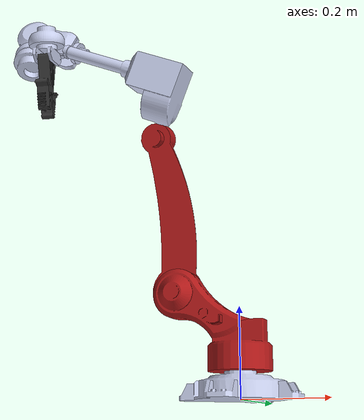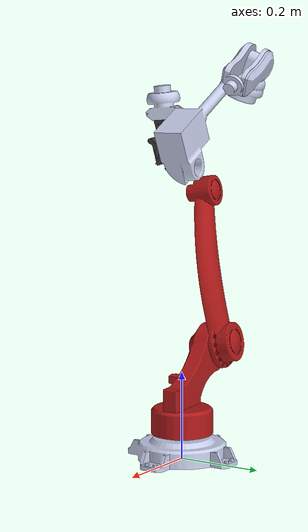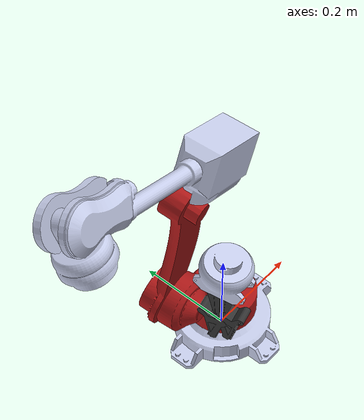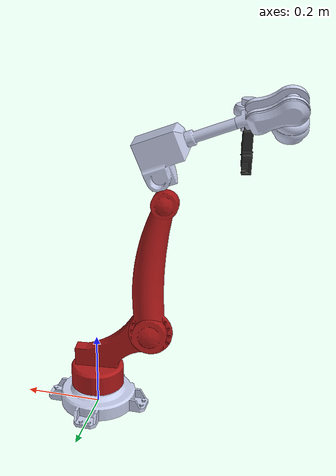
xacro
<?xml version="1.0" ?>
<robot xmlns:xacro="http://www.ros.org/wiki/xacro" name = "robotic_arm">
  <xacro:arg name = "is_ignition" default = "true"/>

  <xacro:include filename="$(find arduinobot_description)/urdf/robotic_arm_core.xacro"/>
  <xacro:include filename = "$(find arduinobot_description)/urdf/robotic_arm_gazebo.xacro"/>
  <xacro:include filename = "$(find arduinobot_description)/urdf/robotic_arm_ros2_control.xacro"/>

</robot>

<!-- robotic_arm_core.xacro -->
<robot xmlns:xacro="http://www.ros.org/wiki/xacro">
<!-- |    This document was autogenerated by xacro from /home/darkhorse/ros2_ws/src/arduinobot_description/description/urdf/arduinobot_description.urdf.xacro | -->
<!-- |    EDITING THIS FILE BY HAND IS NOT RECOMMENDED                                 | -->
  <xacro:arg name = "is_ignition" default = "true"/>
  <link name = "world"/>

  <joint name = "base_joint" type = "fixed">
    <parent link = "world"/>
    <child link = "base_link"/>
    <origin rpy = "0 0 0" xyz = "0.0 0.0 0.0"/>
  </joint>
  <link
    name="base_link">
    <inertial>
      <origin
        xyz="0.00067074 0.026079 -0.00067074"
        rpy="0 0 0" />
      <mass
        value="1.6594" />
      <inertia
        ixx="0.0046976"
        ixy="4.6829E-06"
        ixz="-7.3002E-05"
        iyy="0.0081457"
        iyz="-4.6829E-06"
        izz="0.0046976" />
    </inertial>
    <visual>
      <origin
        xyz="0 0 0"
        rpy="0 0 0" />
      <geometry>
        <mesh
          filename="package://arduinobot_description/meshes/base_link.STL" />
      </geometry>
      <material
        name="">
        <color
          rgba="0.79216 0.81961 0.93333 1" />
      </material>
    </visual>
    <collision>
      <origin
        xyz="0 0 0"
        rpy="0 0 0" />
      <geometry>
        <mesh
          filename="package://arduinobot_description/meshes/base_link.STL" />
      </geometry>
    </collision>
  </link>
  <link
    name="link_1">
    <inertial>
      <origin
        xyz="-0.042602 0.076543 0.0034922"
        rpy="0 0 0" />
      <mass
        value="1.5863" />
      <inertia
        ixx="0.0073712"
        ixy="0.0051171"
        ixz="0.00039749"
        iyy="0.0083314"
        iyz="-0.0003937"
        izz="0.01317" />
    </inertial>
    <visual>
      <origin
        xyz="0 0 0"
        rpy="0 0 0" />
      <geometry>
        <mesh
          filename="package://arduinobot_description/meshes/link_1.STL" />
      </geometry>
      <material
        name="">
        <color
          rgba="0.69412 0.098039 0.098039 1" />
      </material>
    </visual>
    <collision>
      <origin
        xyz="0 0 0"
        rpy="0 0 0" />
      <geometry>
        <mesh
          filename="package://arduinobot_description/meshes/link_1.STL" />
      </geometry>
    </collision>
  </link>
  <joint
    name="joint_1"
    type="revolute">
    <origin
      xyz="0 0 0.06"
      rpy="1.5708 0 0.45791" />
    <parent
      link="base_link" />
    <child
      link="link_1" />
    <axis
      xyz="-0.00078022 0.11635 0.99321" />
    <limit
      lower="-3.142"
      upper="3.142"
      effort="300"
      velocity="3" />
  </joint>
  <link
    name="link_2">
    <inertial>
      <origin
        xyz="-0.14503 0.031735 0.008829"
        rpy="0 0 0" />
      <mass
        value="1.1214" />
      <inertia
        ixx="0.00077647"
        ixy="0.00010994"
        ixz="0.00027965"
        iyy="0.021115"
        iyz="1.5086E-06"
        izz="0.020765" />
    </inertial>
    <visual>
      <origin
        xyz="0 0 0"
        rpy="0 0 0" />
      <geometry>
        <mesh
          filename="package://arduinobot_description/meshes/link_2.STL" />
      </geometry>
      <material
        name="">
        <color
          rgba="0.69412 0.098039 0.098039 1" />
      </material>
    </visual>
    <collision>
      <origin
        xyz="0 0 0"
        rpy="0 0 0" />
      <geometry>
        <mesh
          filename="package://arduinobot_description/meshes/link_2.STL" />
      </geometry>
    </collision>
  </link>
  <joint
    name="joint_2"
    type="revolute">
    <origin
      xyz="-0.1461 0.17286 0"
      rpy="-1.5708 0 -1.8957" />
    <parent
      link="link_1" />
    <child
      link="link_2" />
    <axis
      xyz="0 -1 0" />
    <limit
      lower="-1.57"
      upper="1.57"
      effort="200"
      velocity="3" />
  </joint>
  <link
    name="link_3">
    <inertial>
      <origin
        xyz="0.044368 0.055668 -0.021756"
        rpy="0 0 0" />
      <mass
        value="1.0046" />
      <inertia
        ixx="0.0013582"
        ixy="-0.0004625"
        ixz="3.3743E-05"
        iyy="0.0041005"
        iyz="4.7084E-05"
        izz="0.0047697" />
    </inertial>
    <visual>
      <origin
        xyz="0 0 0"
        rpy="0 0 0" />
      <geometry>
        <mesh
          filename="package://arduinobot_description/meshes/link_3.STL" />
      </geometry>
      <material
        name="">
        <color
          rgba="0.79216 0.81961 0.93333 1" />
      </material>
    </visual>
    <collision>
      <origin
        xyz="0 0 0"
        rpy="0 0 0" />
      <geometry>
        <mesh
          filename="package://arduinobot_description/meshes/link_3.STL" />
      </geometry>
    </collision>
  </link>
  <joint
    name="joint_3"
    type="revolute">
    <origin
      xyz="-0.35 0 0"
      rpy="-1.5708 1.2391 0" />
    <parent
      link="link_2" />
    <child
      link="link_3" />
    <axis
      xyz="0 0 1" />
    <limit
      lower="0"
      upper="3.142"
      effort="200"
      velocity="3" />
  </joint>
  <link
    name="link_4">
    <inertial>
      <origin
        xyz="0.06401 -1.6292E-07 -7.6483E-08"
        rpy="0 0 0" />
      <mass
        value="0.44798" />
      <inertia
        ixx="0.00045822"
        ixy="-3.9267E-10"
        ixz="1.192E-08"
        iyy="0.0012345"
        iyz="5.9882E-11"
        izz="0.0010823" />
    </inertial>
    <visual>
      <origin
        xyz="0 0 0"
        rpy="0 0 0" />
      <geometry>
        <mesh
          filename="package://arduinobot_description/meshes/link_4.STL" />
      </geometry>
      <material
        name="">
        <color
          rgba="0.79216 0.81961 0.93333 1" />
      </material>
    </visual>
    <collision>
      <origin
        xyz="0 0 0"
        rpy="0 0 0" />
      <geometry>
        <mesh
          filename="package://arduinobot_description/meshes/link_4.STL" />
      </geometry>
    </collision>
  </link>
  <joint
    name="joint_4"
    type="revolute">
    <origin
      xyz="0.30339 0.067122 -0.0225"
      rpy="0.11661 0 0" />
    <parent
      link="link_3" />
    <child
      link="link_4" />
    <axis
      xyz="1 0 0" />
    <limit
      lower="-3.142"
      upper="3.142"
      effort="200"
      velocity="3" />
  </joint>
  <link
    name="link_5">
    <inertial>
      <origin
        xyz="1.1102E-16 -0.054303 -4.1633E-17"
        rpy="0 0 0" />
      <mass
        value="0.38604" />
      <inertia
        ixx="0.00044952"
        ixy="1.5247E-19"
        ixz="2.7105E-20"
        iyy="0.00031694"
        iyz="8.1315E-20"
        izz="0.00044603" />
    </inertial>
    <visual>
      <origin
        xyz="0 0 0"
        rpy="0 0 0" />
      <geometry>
        <mesh
          filename="package://arduinobot_description/meshes/link_5.STL" />
      </geometry>
      <material
        name="">
        <color
          rgba="0.79216 0.81961 0.93333 1" />
      </material>
    </visual>
    <collision>
      <origin
        xyz="0 0 0"
        rpy="0 0 0" />
      <geometry>
        <mesh
          filename="package://arduinobot_description/meshes/link_5.STL" />
      </geometry>
    </collision>
  </link>
  <joint
    name="joint_5"
    type="revolute">
    <origin
      xyz="0.10501 0 0"
      rpy="0 0 0.040471" />
    <parent
      link="link_4" />
    <child
      link="link_5" />
    <axis
      xyz="0 0 -1" />
    <limit
      lower="-1.57"
      upper="1.57"
      effort="200"
      velocity="3" />
  </joint>
  <link
    name="link_6">
    <inertial>
      <origin
        xyz="1.1102E-16 -0.03103 5.5511E-17"
        rpy="0 0 0" />
      <mass
        value="0.18088" />
      <inertia
        ixx="0.00011376"
        ixy="-1.6305E-20"
        ixz="1.1858E-20"
        iyy="0.00011418"
        iyz="-1.8635E-20"
        izz="0.00010947" />
    </inertial>
    <visual>
      <origin
        xyz="0 0 0"
        rpy="0 0 0" />
      <geometry>
        <mesh
          filename="package://arduinobot_description/meshes/link_6.STL" />
      </geometry>
      <material
        name="">
        <color
          rgba="0.79216 0.81961 0.93333 1" />
      </material>
    </visual>
    <collision>
      <origin
        xyz="0 0 0"
        rpy="0 0 0" />
      <geometry>
        <mesh
          filename="package://arduinobot_description/meshes/link_6.STL" />
      </geometry>
    </collision>
  </link>
  <joint
    name="joint_6"
    type="revolute">
    <origin
      xyz="0 -0.085863 0"
      rpy="0 -0.21729 0" />
    <parent
      link="link_5" />
    <child
      link="link_6" />
    <axis
      xyz="0 -1 0" />
    <limit
      lower="-3.142"
      upper="3.142"
      effort="200"
      velocity="3" />
  </joint>
  <link
    name="gripper_1">
    <inertial>
      <origin
        xyz="0.015647 6.5254E-05 0.051476"
        rpy="0 0 0" />
      <mass
        value="0.05463" />
      <inertia
        ixx="6.4686E-05"
        ixy="-5.9695E-08"
        ixz="-1.3165E-05"
        iyy="6.8871E-05"
        iyz="-1.262E-07"
        izz="1.0445E-05" />
    </inertial>
    <visual>
      <origin
        xyz="0 0 0"
        rpy="0 0 0" />
      <geometry>
        <mesh
          filename="package://arduinobot_description/meshes/gripper_1.STL" />
      </geometry>
      <material
        name="">
        <color
          rgba="0.2 0.2 0.2 1" />
      </material>
    </visual>
    <collision>
      <origin
        xyz="0 0 0"
        rpy="0 0 0" />
      <geometry>
        <mesh
          filename="package://arduinobot_description/meshes/gripper_1.STL" />
      </geometry>
    </collision>
  </link>
  <joint
    name="joint_7"
    type="revolute">
    <origin
      xyz="0 -0.06071 0.03614"
      rpy="0 1.1954 -1.5708" />
    <parent
      link="link_6" />
    <child
      link="gripper_1" />
    <axis
      xyz="0 1 0" />
    <limit
      lower="0"
      upper="1.57"
      effort="200"
      velocity="3" />
  </joint>
  <link
    name="gripper_2">
    <inertial>
      <origin
        xyz="-0.056383 6.5254E-05 0.057488"
        rpy="0 0 0" />
      <mass
        value="0.05463" />
      <inertia
        ixx="6.4686E-05"
        ixy="-5.9695E-08"
        ixz="-1.3165E-05"
        iyy="6.8871E-05"
        iyz="-1.262E-07"
        izz="1.0445E-05" />
    </inertial>
    <visual>
      <origin
        xyz="0 0 0"
        rpy="0 0 0" />
      <geometry>
        <mesh
          filename="package://arduinobot_description/meshes/gripper_2.STL" />
      </geometry>
      <material
        name="">
        <color
          rgba="0.2 0.2 0.2 1" />
      </material>
    </visual>
    <collision>
      <origin
        xyz="0 0 0"
        rpy="0 0 0" />
      <geometry>
        <mesh
          filename="package://arduinobot_description/meshes/gripper_2.STL" />
      </geometry>
    </collision>
  </link>
  <joint
    name="joint_8"
    type="revolute">
    <origin
      xyz="0 -0.06071 0.03614"
      rpy="-3.1416 -1.4875 -1.5708" />
    <parent
      link="link_6" />
    <child
      link="gripper_2" />
    <axis
      xyz="0 -1 0" />
    <limit
      lower="0"
      upper="1.57"
      effort="200"
      velocity="3" />
    <mimic joint = "joint_7" multiplier = "-1"/>
  </joint>
</robot>
